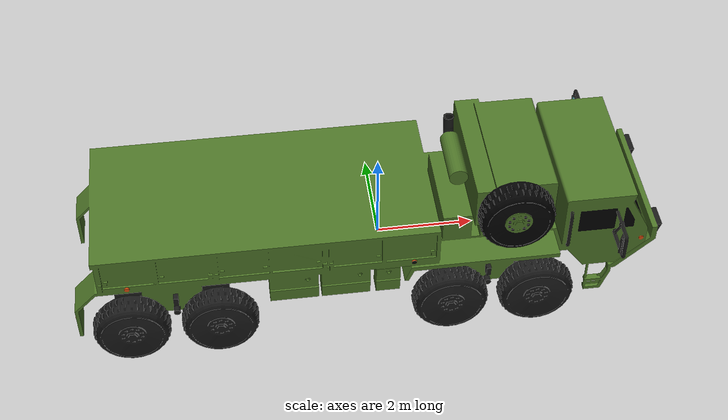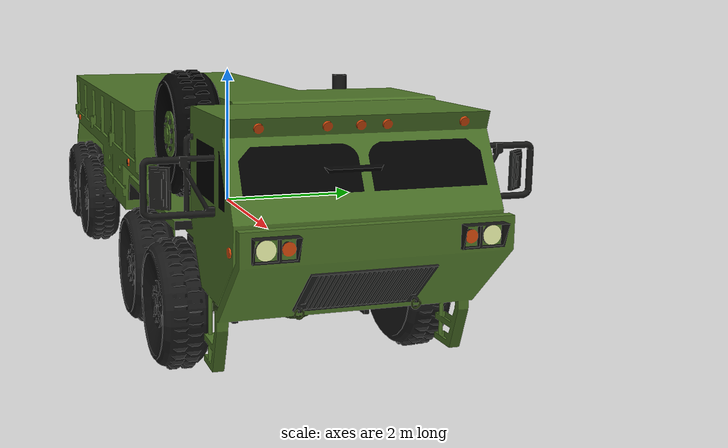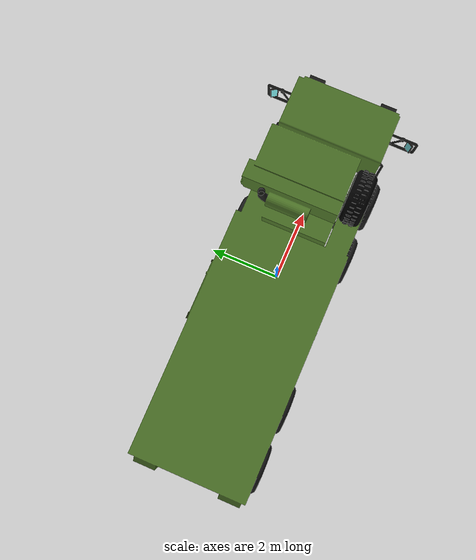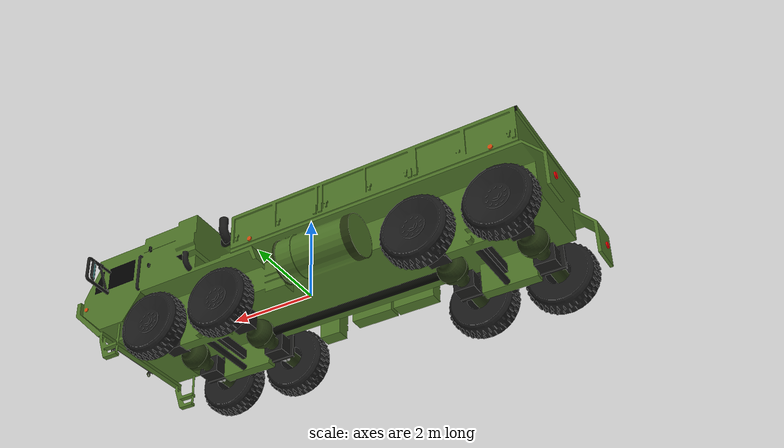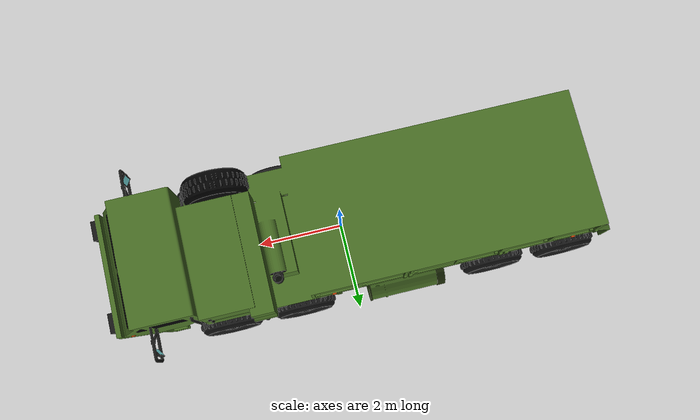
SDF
<?xml version="1.0" encoding="UTF-8"?>
<!-- -*- mode: XML -*- -->
<sdf version='1.4'>
	<model name='Oshkosh'>
		<link name='body'>
			<pose>0 0 0 0 0 0</pose>
			<gravity>1</gravity>
			<self_collide>1</self_collide>
			<inertial>
				<pose>-1.00 0.00 -0.4 0 0 0</pose>
				<mass>2000</mass>
				<inertia>
					<ixx>3000</ixx>
					<ixy>0.00</ixy>
					<ixz>0.00</ixz>
					<iyy>20000</iyy>
					<iyz>0.00</iyz>
					<izz>20000</izz>
				</inertia>
			</inertial>
			<collision name='body_collision_base_bottom'>
				<pose>-2.387 0 0.36711 0 0 0</pose>
				<geometry>
					<box>
						<size>6.7 1.187 1.154</size>
					</box>
				</geometry>
			</collision>
			<collision name='body_collision_trunk'>
				<pose>-2.384 0 1.0285 0 0 0</pose>
				<geometry>
					<box>
						<size>6.813 3 1</size>
					</box>
				</geometry>
			</collision>
			<collision name='body_collision_front'>
				<pose>3.05 0 1.145 0 0 0</pose>
				<geometry>
					<box>
						<size>3.77 3.207 1.412</size>
					</box>
				</geometry>
			</collision>
			<collision name='body_collision_uppper_slope'>
				<pose>4.6465 0.022 0.93 0 -0.471 0</pose>
				<geometry>
					<box>
						<size>1.162 2.898 1.436</size>
					</box>
				</geometry>
			</collision>
			<collision name='body_collision_lower_slope'>
				<pose>4.827 0.03 0.49525 0 2.35 0</pose>
				<geometry>
					<box>
						<size>1.161 2.9 1</size>
					</box>
				</geometry>
			</collision>
			<visual name='body_visual'>
				<pose>0 0 0 0 0 0</pose>
				<geometry>
					<mesh>
						<scale>1 1 1</scale>
						<uri>model://oshkosh/meshes/body_dynamic.dae</uri>
					</mesh>
				</geometry>
			</visual>
		</link>

<!--Suspension setup-->
<link name="suspension_left_1">
  <pose>3.09659 0 -0.55525 0 0 0</pose>
  <inertial>
    <inertia>
      <ixx>0.01</ixx>
      <ixy>0.0</ixy>
      <ixz>0.0</ixz>
      <iyy>0.01</iyy>
      <iyz>0.0</iyz>
      <izz>0.01</izz>
    </inertia>
     <mass>100</mass>
  </inertial>
  <visual name='visual'>
    <pose>0 0 0 0 0 3.14159265359</pose>
    <geometry>
      <mesh>
        <scale>1 1 1</scale>
        <uri>model://oshkosh/meshes/Suspension.dae</uri>
      </mesh>
    </geometry>

  </visual>
</link>
<joint name="spring_left_1" type="revolute">
  <parent>body</parent>
  <child>suspension_left_1</child>
  <pose>0.0 0.0 0.0 0.0 0.0 0.0</pose>
  <axis>
    <limit>
      <lower>-0.8</lower>
      <upper>0.08</upper>
    </limit>
    <xyz>1 0 0</xyz>
    <dynamics>
      <spring_stiffness>40001</spring_stiffness>
      <spring_reference>-0.1</spring_reference>
      <damping>2002</damping>
    </dynamics>
  </axis>
</joint>
<link name="suspension_left_2">
  <pose>1.30729 0 -0.55525 0 0 0</pose>
  <inertial>
    <inertia>
      <ixx>0.01</ixx>
      <ixy>0.0</ixy>
      <ixz>0.0</ixz>
      <iyy>0.01</iyy>
      <iyz>0.0</iyz>
      <izz>0.01</izz>
    </inertia>
     <mass>100</mass>
  </inertial>
  <visual name='visual'>
    <pose>0 0 0 0 0 3.14159265359</pose>
    <geometry>
      <mesh>
        <scale>1 1 1</scale>
        <uri>model://oshkosh/meshes/Suspension.dae</uri>
      </mesh>
    </geometry>

  </visual>
</link>
<joint name="spring_left_2" type="revolute">
  <parent>body</parent>
  <child>suspension_left_2</child>
  <pose>0.0 0.0 0.0 0.0 0.0 0.0</pose>
  <axis>
    <limit>
      <lower>-0.8</lower>
      <upper>0.08</upper>
    </limit>
    <xyz>1 0 0</xyz>
    <dynamics>
      <spring_stiffness>40001</spring_stiffness>
      <spring_reference>-0.1</spring_reference>
      <damping>2002</damping>
    </dynamics>
  </axis>
</joint>
<link name="suspension_left_3">
  <pose>-3.42202 0 -0.55525 0 0 0</pose>
  <inertial>
    <inertia>
      <ixx>0.01</ixx>
      <ixy>0.0</ixy>
      <ixz>0.0</ixz>
      <iyy>0.01</iyy>
      <iyz>0.0</iyz>
      <izz>0.01</izz>
    </inertia>
     <mass>100</mass>
  </inertial>
  <visual name='visual'>
    <pose>0 0 0 0 0 3.14159265359</pose>
    <geometry>
      <mesh>
        <scale>1 1 1</scale>
        <uri>model://oshkosh/meshes/Suspension.dae</uri>
      </mesh>
    </geometry>

  </visual>
</link>
<joint name="spring_left_3" type="revolute">
  <parent>body</parent>
  <child>suspension_left_3</child>
  <pose>0.0 0.0 0.0 0.0 0.0 0.0</pose>
  <axis>
    <limit>
      <lower>-0.8</lower>
      <upper>0.08</upper>
    </limit>
    <xyz>1 0 0</xyz>
    <dynamics>
      <spring_stiffness>40001</spring_stiffness>
      <spring_reference>-0.1</spring_reference>
      <damping>2002</damping>
    </dynamics>
  </axis>
</joint>
<link name="suspension_left_4">
  <pose>-5.21133 0 -0.55525 0 0 0</pose>
  <inertial>
    <inertia>
      <ixx>0.01</ixx>
      <ixy>0.0</ixy>
      <ixz>0.0</ixz>
      <iyy>0.01</iyy>
      <iyz>0.0</iyz>
      <izz>0.01</izz>
    </inertia>
     <mass>100</mass>
  </inertial>
  <visual name='visual'>
    <pose>0 0 0 0 0 3.14159265359</pose>
    <geometry>
      <mesh>
        <scale>1 1 1</scale>
        <uri>model://oshkosh/meshes/Suspension.dae</uri>
      </mesh>
    </geometry>

  </visual>
</link>
<joint name="spring_left_4" type="revolute">
  <parent>body</parent>
  <child>suspension_left_4</child>
  <pose>0.0 0.0 0.0 0.0 0.0 0.0</pose>
  <axis>
    <limit>
      <lower>-0.8</lower>
      <upper>0.08</upper>
    </limit>
    <xyz>1 0 0</xyz>
    <dynamics>
      <spring_stiffness>40001</spring_stiffness>
      <spring_reference>-0.1</spring_reference>
      <damping>2002</damping>
    </dynamics>
  </axis>
</joint>
<link name="suspension_right_1">
  <pose>3.09659 -0 -0.55525 0 0 0</pose>
  <inertial>
    <inertia>
      <ixx>0.01</ixx>
      <ixy>0.0</ixy>
      <ixz>0.0</ixz>
      <iyy>0.01</iyy>
      <iyz>0.0</iyz>
      <izz>0.01</izz>
    </inertia>
     <mass>100</mass>
  </inertial>
  <visual name='visual'>
    <pose>0 0 0 0 0 0</pose>
    <geometry>
      <mesh>
        <scale>1 1 1</scale>
        <uri>model://oshkosh/meshes/Suspension.dae</uri>
      </mesh>
    </geometry>

  </visual>
</link>
<joint name="spring_right_1" type="revolute">
  <parent>body</parent>
  <child>suspension_right_1</child>
  <pose>0.0 0.0 0.0 0.0 0.0 0.0</pose>
  <axis>
    <limit>
      <lower>-0.8</lower>
      <upper>0.08</upper>
    </limit>
    <xyz>-1 0 0</xyz>
    <dynamics>
      <spring_stiffness>40001</spring_stiffness>
      <spring_reference>-0.1</spring_reference>
      <damping>2002</damping>
    </dynamics>
  </axis>
</joint>
<link name="suspension_right_2">
  <pose>1.30729 -0 -0.55525 0 0 0</pose>
  <inertial>

    <inertia>

      <ixx>0.01</ixx>
      <ixy>0.0</ixy>
      <ixz>0.0</ixz>
      <iyy>0.01</iyy>
      <iyz>0.0</iyz>
      <izz>0.01</izz>
    </inertia>
     <mass>100</mass>
  </inertial>
  <visual name='visual'>
    <pose>0 0 0 0 0 0</pose>
    <geometry>
      <mesh>
        <scale>1 1 1</scale>
        <uri>model://oshkosh/meshes/Suspension.dae</uri>
      </mesh>
    </geometry>

  </visual>
</link>
<joint name="spring_right_2" type="revolute">
  <parent>body</parent>
  <child>suspension_right_2</child>
  <pose>0.0 0.0 0.0 0.0 0.0 0.0</pose>
  <axis>
    <limit>
      <lower>-0.8</lower>
      <upper>0.08</upper>
    </limit>
    <xyz>-1 0 0</xyz>
    <dynamics>
      <spring_stiffness>40001</spring_stiffness>
      <spring_reference>-0.1</spring_reference>
      <damping>2002</damping>
    </dynamics>
  </axis>
</joint>
<link name="suspension_right_3">
  <pose>-3.42202 -0 -0.55525 0 0 0</pose>
  <inertial>
    <inertia>
      <ixx>0.01</ixx>
      <ixy>0.0</ixy>
      <ixz>0.0</ixz>
      <iyy>0.01</iyy>
      <iyz>0.0</iyz>
      <izz>0.01</izz>
    </inertia>
     <mass>100</mass>
  </inertial>
  <visual name='visual'>
    <pose>0 0 0 0 0 0</pose>
    <geometry>
      <mesh>
        <scale>1 1 1</scale>
        <uri>model://oshkosh/meshes/Suspension.dae</uri>
      </mesh>
    </geometry>

  </visual>
</link>
<joint name="spring_right_3" type="revolute">
  <parent>body</parent>
  <child>suspension_right_3</child>
  <pose>0.0 0.0 0.0 0.0 0.0 0.0</pose>
  <axis>
    <limit>
      <lower>-0.8</lower>
      <upper>0.08</upper>
    </limit>
    <xyz>-1 0 0</xyz>
    <dynamics>
      <spring_stiffness>40001</spring_stiffness>
      <spring_reference>-0.1</spring_reference>
      <damping>2002</damping>
    </dynamics>
  </axis>
</joint>
<link name="suspension_right_4">
  <pose>-5.21133 -0 -0.55525 0 0 0</pose>
  <inertial>
    <inertia>
      <ixx>0.01</ixx>
      <ixy>0.0</ixy>
      <ixz>0.0</ixz>
      <iyy>0.01</iyy>
      <iyz>0.0</iyz>
      <izz>0.01</izz>
    </inertia>
     <mass>100</mass>
  </inertial>
  <visual name='visual'>
    <pose>0 0 0 0 0 0</pose>
    <geometry>
      <mesh>
        <scale>1 1 1</scale>
        <uri>model://oshkosh/meshes/Suspension.dae</uri>
      </mesh>
    </geometry>

  </visual>
</link>
<joint name="spring_right_4" type="revolute">
  <parent>body</parent>
  <child>suspension_right_4</child>
  <pose>0.0 0.0 0.0 0.0 0.0 0.0</pose>
  <axis>
    <limit>
      <lower>-0.8</lower>
      <upper>0.08</upper>
    </limit>
    <xyz>-1 0 0</xyz>
    <dynamics>
      <spring_stiffness>40001</spring_stiffness>
      <spring_reference>-0.1</spring_reference>
      <damping>2002</damping>
    </dynamics>
  </axis>
</joint>
<!--End of suspension setup-->

<!--steering setup-->
<link name="steering_left_1">
  <pose>3.09659 1 -0.55525 0 0 0</pose>
  <inertial>
    <inertia>
      <ixx>0.01</ixx>
      <ixy>0.0</ixy>
      <ixz>0.0</ixz>
      <iyy>0.01</iyy>
      <iyz>0.0</iyz>
      <izz>0.01</izz>
    </inertia>
    <mass>20</mass>
  </inertial>
  <visual name='visual'>
    <pose>0 0 0 0 0 3.14159265359</pose>
    <geometry>
      <cylinder>
        <radius>0.1</radius>
        <length>0.3</length>
      </cylinder>
    </geometry>
  </visual>
</link>
<joint name="steering_joint_left_1" type="revolute">
  <parent>suspension_left_1</parent>
  <child>steering_left_1</child>
  <pose>0.0 0.0 0.0 0.0 0.0 0.0</pose>
  <axis> <dynamics><damping>1</damping></dynamics>
    <limit>
      <lower>-0.61</lower>
      <upper>0.61</upper>
    </limit>
    <xyz>0 0 1</xyz>
  </axis>
</joint>
<link name="steering_left_2">
  <pose>1.30729 1 -0.55525 0 0 0</pose>
  <inertial>
    <inertia>
      <ixx>0.01</ixx>
      <ixy>0.0</ixy>
      <ixz>0.0</ixz>
      <iyy>0.01</iyy>
      <iyz>0.0</iyz>
      <izz>0.01</izz>
    </inertia>
    <mass>20</mass>
  </inertial>
  <visual name='visual'>
    <pose>0 0 0 0 0 3.14159265359</pose>
    <geometry>
      <cylinder>
        <radius>0.1</radius>
        <length>0.3</length>
      </cylinder>
    </geometry>
  </visual>
</link>
<joint name="steering_joint_left_2" type="revolute">
  <parent>suspension_left_2</parent>
  <child>steering_left_2</child>
  <pose>0.0 0.0 0.0 0.0 0.0 0.0</pose>
  <axis> <dynamics><damping>1</damping></dynamics>
    <limit>
      <lower>-0.61</lower>
      <upper>0.61</upper>
    </limit>
    <xyz>0 0 1</xyz>
  </axis>
</joint>
<link name="steering_right_1">
  <pose>3.09659 -1 -0.55525 0 0 0</pose>
  <inertial>
    <inertia>
      <ixx>0.01</ixx>
      <ixy>0.0</ixy>
      <ixz>0.0</ixz>
      <iyy>0.01</iyy>
      <iyz>0.0</iyz>
      <izz>0.01</izz>
    </inertia>
    <mass>20</mass>
  </inertial>
  <visual name='visual'>
    <pose>0 0 0 0 0 0</pose>
    <geometry>
      <cylinder>
        <radius>0.1</radius>
        <length>0.3</length>
      </cylinder>
    </geometry>
  </visual>
</link>
<joint name="steering_joint_right_1" type="revolute">
  <parent>suspension_right_1</parent>
  <child>steering_right_1</child>
  <pose>0.0 0.0 0.0 0.0 0.0 0.0</pose>
  <axis> <dynamics><damping>1</damping></dynamics>
    <limit>
      <lower>-0.61</lower>
      <upper>0.61</upper>
    </limit>
    <xyz>0 0 1</xyz>
  </axis>
</joint>
<link name="steering_right_2">
  <pose>1.30729 -1 -0.55525 0 0 0</pose>
  <inertial>
    <inertia>
      <ixx>0.01</ixx>
      <ixy>0.0</ixy>
      <ixz>0.0</ixz>
      <iyy>0.01</iyy>
      <iyz>0.0</iyz>
      <izz>0.01</izz>
    </inertia>
    <mass>20</mass>
  </inertial>
  <visual name='visual'>
    <pose>0 0 0 0 0 0</pose>
    <geometry>
      <cylinder>
        <radius>0.1</radius>
        <length>0.3</length>
      </cylinder>
    </geometry>
  </visual>
</link>
<joint name="steering_joint_right_2" type="revolute">
  <parent>suspension_right_2</parent>
  <child>steering_right_2</child>
  <pose>0.0 0.0 0.0 0.0 0.0 0.0</pose>
  <axis> <dynamics><damping>1</damping></dynamics>
    <limit>
      <lower>-0.61</lower>
      <upper>0.61</upper>
    </limit>
    <xyz>0 0 1</xyz>
  </axis>
</joint>
<!--End of steering setup-->

<!--Wheels Setup-->
<link name='left_wheel_1'>
	<pose>3.09659 1.60293 -0.55525 0 0 0</pose>
	<inertial>
		<pose>0 0 0 0 0 0</pose>
		 <mass>30</mass>
		<inertia>
			<ixx>15</ixx>
			<ixy>0</ixy>
			<ixz>0</ixz>
			<iyy>30</iyy>
			<iyz>0</iyz>
			<izz>15</izz>
		</inertia>
	</inertial>
	<collision name='left_wheel_1_col'>
		<pose>0 -0.1 0 1.57079633 0 0</pose>
		<geometry>
			<sphere>
				<length>0.5</length>
				<radius>0.78</radius>
			</sphere>
		</geometry>
	</collision>
	<visual name='left_wheel'>
		<pose>0 0 0 0 -0 0</pose>
		<geometry>
			<mesh>
				<uri>model://oshkosh/meshes/Oshkosh_left_Wheel.stl</uri>
			</mesh>
		</geometry>
		<material>
			<ambient>0.2 0.2 0.2 1</ambient>
			<diffuse>0.1 0.1 0.1 1</diffuse>
			<specular>1 1 1 1</specular>
			<emissive>0 0 0 1</emissive>
		</material>
	</visual>
	<gravity>1</gravity>
	<self_collide>0</self_collide>
</link>
<joint name='left_wheel_1' type='revolute'>
	<child>left_wheel_1</child>
	<parent>steering_left_1</parent>
	<axis>
		<xyz>0 1 0</xyz>
	</axis>
</joint>
<link name='left_wheel_2'>
	<pose>1.30729 1.60293 -0.55525 0 0 0</pose>
	<inertial>
		<pose>0 0 0 0 0 0</pose>
		 <mass>30</mass>
		<inertia>
			<ixx>15</ixx>
			<ixy>0</ixy>
			<ixz>0</ixz>
			<iyy>30</iyy>
			<iyz>0</iyz>
			<izz>15</izz>
		</inertia>
	</inertial>
	<collision name='left_wheel_2_col'>
		<pose>0 -0.1 0 1.57079633 0 0</pose>
		<geometry>
			<sphere>
				<length>0.5</length>
				<radius>0.78</radius>
			</sphere>
		</geometry>
	</collision>
	<visual name='left_wheel'>
		<pose>0 0 0 0 -0 0</pose>
		<geometry>
			<mesh>
				<uri>model://oshkosh/meshes/Oshkosh_left_Wheel.stl</uri>
			</mesh>
		</geometry>
		<material>
			<ambient>0.2 0.2 0.2 1</ambient>
			<diffuse>0.1 0.1 0.1 1</diffuse>
			<specular>1 1 1 1</specular>
			<emissive>0 0 0 1</emissive>
		</material>
	</visual>
	<gravity>1</gravity>
	<self_collide>0</self_collide>
</link>
<joint name='left_wheel_2' type='revolute'>
	<child>left_wheel_2</child>
	<parent>steering_left_2</parent>
	<axis>
		<xyz>0 1 0</xyz>
	</axis>
</joint>
<link name='left_wheel_3'>
	<pose>-3.42202 1.60293 -0.55525 0 0 0</pose>
	<inertial>
		<pose>0 0 0 0 0 0</pose>
		 <mass>30</mass>
		<inertia>
			<ixx>15</ixx>
			<ixy>0</ixy>
			<ixz>0</ixz>
			<iyy>30</iyy>
			<iyz>0</iyz>
			<izz>15</izz>
		</inertia>
	</inertial>
	<collision name='left_wheel_3_col'>
		<pose>0 -0.1 0 1.57079633 0 0</pose>
		<geometry>
			<sphere>
				<length>0.5</length>
				<radius>0.78</radius>
			</sphere>
		</geometry>
	</collision>
	<visual name='left_wheel'>
		<pose>0 0 0 0 -0 0</pose>
		<geometry>
			<mesh>
				<uri>model://oshkosh/meshes/Oshkosh_left_Wheel.stl</uri>
			</mesh>
		</geometry>
		<material>
			<ambient>0.2 0.2 0.2 1</ambient>
			<diffuse>0.1 0.1 0.1 1</diffuse>
			<specular>1 1 1 1</specular>
			<emissive>0 0 0 1</emissive>
		</material>
	</visual>
	<gravity>1</gravity>
	<self_collide>0</self_collide>
</link>
<joint name='left_wheel_3' type='revolute'>
	<child>left_wheel_3</child>
	<parent>suspension_left_3</parent>
	<axis>
		<xyz>0 1 0</xyz>
	</axis>
</joint>
<link name='left_wheel_4'>
	<pose>-5.21133 1.60293 -0.55525 0 0 0</pose>
	<inertial>
		<pose>0 0 0 0 0 0</pose>
		 <mass>30</mass>
		<inertia>
			<ixx>15</ixx>
			<ixy>0</ixy>
			<ixz>0</ixz>
			<iyy>30</iyy>
			<iyz>0</iyz>
			<izz>15</izz>
		</inertia>
	</inertial>
	<collision name='left_wheel_4_col'>
		<pose>0 -0.1 0 1.57079633 0 0</pose>
		<geometry>
			<sphere>
				<length>0.5</length>
				<radius>0.78</radius>
			</sphere>
		</geometry>
	</collision>
	<visual name='left_wheel'>
		<pose>0 0 0 0 -0 0</pose>
		<geometry>
			<mesh>
				<uri>model://oshkosh/meshes/Oshkosh_left_Wheel.stl</uri>
			</mesh>
		</geometry>
		<material>
			<ambient>0.2 0.2 0.2 1</ambient>
			<diffuse>0.1 0.1 0.1 1</diffuse>
			<specular>1 1 1 1</specular>
			<emissive>0 0 0 1</emissive>
		</material>
	</visual>
	<gravity>1</gravity>
	<self_collide>0</self_collide>
</link>
<joint name='left_wheel_4' type='revolute'>
	<child>left_wheel_4</child>
	<parent>suspension_left_4</parent>
	<axis>
		<xyz>0 1 0</xyz>
	</axis>
</joint>
<link name='right_wheel_1'>
	<pose>3.09659 -1.60293 -0.55525 0 0 0</pose>
	<inertial>
		<pose>0 0 0 0 0 0</pose>
		 <mass>30</mass>
		<inertia>
			<ixx>15</ixx>
			<ixy>0</ixy>
			<ixz>0</ixz>
			<iyy>30</iyy>
			<iyz>0</iyz>
			<izz>15</izz>
		</inertia>
	</inertial>
	<collision name='right_wheel_1_col'>
		<pose>0 0.1 0 1.57079633 0 0</pose>
		<geometry>
			<sphere>
				<length>0.5</length>
				<radius>0.78</radius>
			</sphere>
		</geometry>
	</collision>
	<visual name='right_wheel'>
		<pose>0 0 0 0 -0 0</pose>
		<geometry>
			<mesh>
				<uri>model://oshkosh/meshes/Oshkosh_right_Wheel.stl</uri>
			</mesh>
		</geometry>
		<material>
			<ambient>0.2 0.2 0.2 1</ambient>
			<diffuse>0.1 0.1 0.1 1</diffuse>
			<specular>1 1 1 1</specular>
			<emissive>0 0 0 1</emissive>
		</material>
	</visual>
	<gravity>1</gravity>
	<self_collide>0</self_collide>
</link>
<joint name='right_wheel_1' type='revolute'>
	<child>right_wheel_1</child>
	<parent>steering_right_1</parent>
	<axis>
		<xyz>0 1 0</xyz>
	</axis>
</joint>
<link name='right_wheel_2'>
	<pose>1.30729 -1.60293 -0.55525 0 0 0</pose>
	<inertial>
		<pose>0 0 0 0 0 0</pose>
		 <mass>30</mass>
		<inertia>
			<ixx>15</ixx>
			<ixy>0</ixy>
			<ixz>0</ixz>
			<iyy>30</iyy>
			<iyz>0</iyz>
			<izz>15</izz>
		</inertia>
	</inertial>
	<collision name='right_wheel_2_col'>
		<pose>0 0.1 0 1.57079633 0 0</pose>
		<geometry>
			<sphere>
				<length>0.5</length>
				<radius>0.78</radius>
			</sphere>
		</geometry>
	</collision>
	<visual name='right_wheel'>
		<pose>0 0 0 0 -0 0</pose>
		<geometry>
			<mesh>
				<uri>model://oshkosh/meshes/Oshkosh_right_Wheel.stl</uri>
			</mesh>
		</geometry>
		<material>
			<ambient>0.2 0.2 0.2 1</ambient>
			<diffuse>0.1 0.1 0.1 1</diffuse>
			<specular>1 1 1 1</specular>
			<emissive>0 0 0 1</emissive>
		</material>
	</visual>
	<gravity>1</gravity>
	<self_collide>0</self_collide>
</link>
<joint name='right_wheel_2' type='revolute'>
	<child>right_wheel_2</child>
	<parent>steering_right_2</parent>
	<axis>
		<xyz>0 1 0</xyz>
	</axis>
</joint>
<link name='right_wheel_3'>
	<pose>-3.42202 -1.60293 -0.55525 0 0 0</pose>
	<inertial>
		<pose>0 0 0 0 0 0</pose>
		 <mass>30</mass>
		<inertia>
			<ixx>15</ixx>
			<ixy>0</ixy>
			<ixz>0</ixz>
			<iyy>30</iyy>
			<iyz>0</iyz>
			<izz>15</izz>
		</inertia>
	</inertial>
	<collision name='right_wheel_3_col'>
		<pose>0 0.1 0 1.57079633 0 0</pose>
		<geometry>
			<sphere>
				<length>0.5</length>
				<radius>0.78</radius>
			</sphere>
		</geometry>
	</collision>
	<visual name='right_wheel'>
		<pose>0 0 0 0 -0 0</pose>
		<geometry>
			<mesh>
				<uri>model://oshkosh/meshes/Oshkosh_right_Wheel.stl</uri>
			</mesh>
		</geometry>
		<material>
			<ambient>0.2 0.2 0.2 1</ambient>
			<diffuse>0.1 0.1 0.1 1</diffuse>
			<specular>1 1 1 1</specular>
			<emissive>0 0 0 1</emissive>
		</material>
	</visual>
	<gravity>1</gravity>
	<self_collide>0</self_collide>
</link>
<joint name='right_wheel_3' type='revolute'>
	<child>right_wheel_3</child>
	<parent>suspension_right_3</parent>
	<axis>
		<xyz>0 1 0</xyz>
	</axis>
</joint>
<link name='right_wheel_4'>
	<pose>-5.21133 -1.60293 -0.55525 0 0 0</pose>
	<inertial>
		<pose>0 0 0 0 0 0</pose>
		 <mass>30</mass>
		<inertia>
			<ixx>15</ixx>
			<ixy>0</ixy>
			<ixz>0</ixz>
			<iyy>30</iyy>
			<iyz>0</iyz>
			<izz>15</izz>
		</inertia>
	</inertial>
	<collision name='right_wheel_4_col'>
		<pose>0 0.1 0 1.57079633 0 0</pose>
		<geometry>
			<sphere>
				<length>0.5</length>
				<radius>0.78</radius>
			</sphere>
		</geometry>
	</collision>
	<visual name='right_wheel'>
		<pose>0 0 0 0 -0 0</pose>
		<geometry>
			<mesh>
				<uri>model://oshkosh/meshes/Oshkosh_right_Wheel.stl</uri>
			</mesh>
		</geometry>
		<material>
			<ambient>0.2 0.2 0.2 1</ambient>
			<diffuse>0.1 0.1 0.1 1</diffuse>
			<specular>1 1 1 1</specular>
			<emissive>0 0 0 1</emissive>
		</material>
	</visual>
	<gravity>1</gravity>
	<self_collide>0</self_collide>
</link>
<joint name='right_wheel_4' type='revolute'>
	<child>right_wheel_4</child>
	<parent>suspension_right_4</parent>
	<axis>
		<xyz>0 1 0</xyz>
	</axis>
</joint>
<!--End of wheels setup-->
<plugin name="oshkosh_driving_plugin" filename="liboshkosh_driving_plugin.so"/>
	</model>
</sdf>
